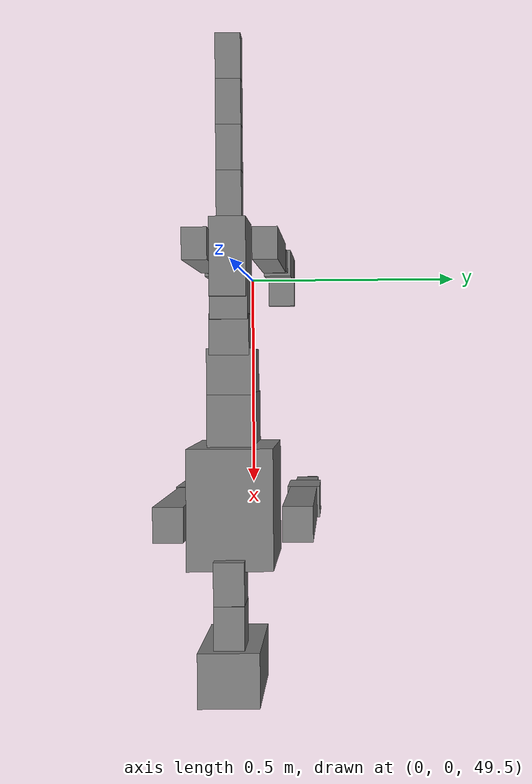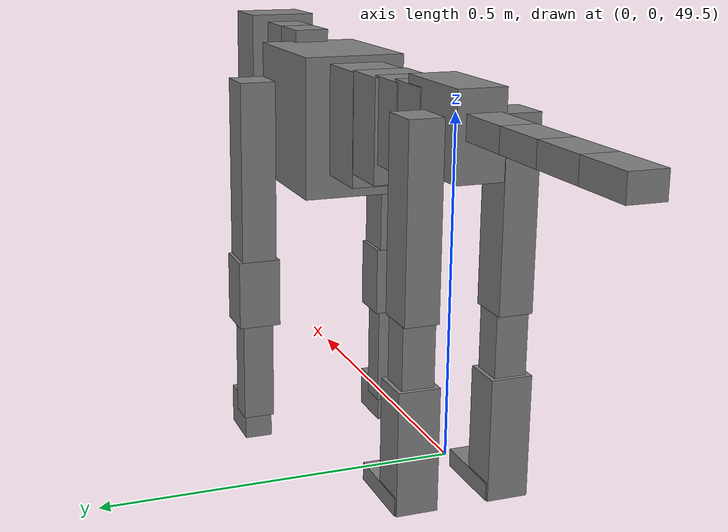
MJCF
<mujoco model="dog">

    <default>
        <joint armature="0.02" stiffness="1" damping="0.2" limited="true"/>
        <geom condim="3" friction="1 0.05 0.05" margin="0.01"/>
        <motor ctrllimited="true" ctrlrange="-1.0 1.0" forcelimited="true" gear="50"/>
    </default>

    <compiler inertiafromgeom="true" angle="radian"/>

    <option timestep="0.016" iterations="50" tolerance="1e-10" solver="Newton" jacobian="dense" cone="pyramidal"/>

    <size nconmax="20000" njmax="60000" nstack="5000000"/>
    <visual>
        <map force="0.1" zfar="30"/>
        <rgba haze="0.15 0.25 0.35 1"/>
        <quality shadowsize="2048"/>
        <global offwidth="800" offheight="800"/>
    </visual>

    <asset>
        <texture type="skybox" builtin="gradient" rgb1="0.3 0.5 0.7" rgb2="0 0 0" width="512" height="512"/>
        <texture name="texplane" type="2d" builtin="checker" rgb1=".2 .3 .4" rgb2=".1 0.15 0.2" width="512" height="512"
                 mark="cross" markrgb=".8 .8 .8"/>
        <texture name="texgeom" type="cube" builtin="flat" mark="cross" width="127" height="1278" rgb1="0.8 0.6 0.4"
                 rgb2="0.8 0.6 0.4" markrgb="1 1 1" random="0.01"/>

        <material name="matplane" reflectance="0.3" texture="texplane" texrepeat="1 1" texuniform="true"/>
        <material name="matgeom" texture="texgeom" texuniform="true" rgba="0.8 0.6 .4 1"/>
    </asset>

    <worldbody>
        <geom name="floor" pos="0 0 0" size="0 0 .25" type="plane" material="matplane" condim="3"/>

        <light directional="false" diffuse=".2 .2 .2" specular="0 0 0" pos="0 0 5" dir="0 0 -1" castshadow="false"/>
        <light mode="targetbodycom" target="torso" directional="false" diffuse=".8 .8 .8" specular="0.3 0.3 0.3"
               pos="0 0 4.0" dir="0 0 -1"/>

        <body name="root" pos="0 0 50">
            <freejoint name="root_1"/>
            <geom type="box" pos="0 0 -0.02" size="0.0774  0.0358  0.063" density="2030"/>

            <body name="spine1" pos="0.054 0 0">
                <joint name="spine1_y" axis="0 1 0" range="0 0.7" limited="true"/>
                <geom type="box" pos="0.02375 0 -0.03" size="0.04375  0.0375  0.05985" density="2030"/>

                <body name="spine2" pos="0.0612 0 0">
                    <joint name="spine2_y" axis="0 1 0" range="-0.15 0.15" limited="true"/>
                    <geom type="box" pos="0.03555  0  -0.04" size="0.04055  0.039  0.06615" density="2030"/>

                    <body name="spine3" pos="0.0730 0 0">
                        <joint name="spine3_y" axis="0 1 0" range="-0.15 0.15" limited="true"/>
                        <geom type="box" pos="0.03555  0  -0.057" size="0.04555  0.0445  0.081" density="2030"/>

                        <body name="spine4" pos="0.0780 0 0">
                            <joint name="spine4_y" axis="0 1 0" range="-0.15 0.15" limited="true"/>
                            <geom type="box" pos="0.05265  0  -0.07" size="0.05265  0.045  0.09135" density="2030"/>

                            <body name="torso" pos="0.1082 0 0">
                                <joint name="torso_y" axis="0 1 0" range="-0.15 0.15" limited="true"/>
                                <geom type="box" pos="0.11925  0  -0.085" size="0.11925  0.085  0.11745"
                                      density="2030"/>

                                <body name="neck1" pos="0.2160  0   0.0180">
                                    <joint name="neck1_y" axis="0 1 0" range="-1.2  -1" limited="true"/>
                                    <geom type="box" pos="0.0423  0  0" size="0.0423  0.03  0.036" density="2325"/>

                                    <body name="neck2" pos="0.0853  0  0">
                                        <joint name="neck2_y" axis="0 1 0" range="0.1  0" limited="true"/>
                                        <geom type="box" pos="0.0423  0  0" size="0.0423  0.03  0.036" density="2325"/>

                                        <body name="head" pos="0.0853  0  0">
                                            <joint name="head_y" axis="0 1 0" range="-0.3  -0.2" limited="true"/>
                                            <geom type="box" pos="0.0531  0  -0.055" size="0.0531  0.06  0.1044"
                                                  density="4030"/>

                                        </body>
                                    </body>
                                </body>

                                <body name="front_shoulder" pos="0.156  0   -0.0480">
                                    <joint name="front_shoulder_y" axis="0 1 0" range="-1 1.5" limited="true"/>
                                    <geom type="box" pos="0 0.13 -0.1449" size="0.0360  0.0308  0.1715" density="1158"/>
                                    <geom type="box" pos="0 -0.13 -0.1449" size="0.0360  0.0308  0.1715"
                                          density="1158"/>

                                    <body name="front_elbow" pos="0  0  -0.2897">
                                        <joint name="front_elbow_y" axis="0 1 0" range="-2 0" limited="true"/>
                                        <geom type="box" pos="0 0.13 -0.0603" size="0.0362  0.0370  0.0603"
                                              density="1081"/>
                                        <geom type="box" pos="0 -0.13 -0.0603" size="0.0362  0.0370  0.0603"
                                              density="1081"/>

                                        <body name="front_wrist" pos="0  0  -0.1206">
                                            <joint name="front_wrist_y" axis="0 1 0" range="-0.2 0" limited="true"/>
                                            <geom type="box" pos="0 0.13 -0.0817" size="0.0245  0.0273  0.0948"
                                                  density="1664"/>
                                            <geom type="box" pos="0 -0.13 -0.0817" size="0.0245  0.0273  0.0948"
                                                  density="1664"/>

                                            <body name="front_finger_end" pos="0  0  -0.1634">
                                                <joint name="front_finger_y" axis="0 1 0" range="-0.4 1"
                                                       limited="true"/>
                                                <geom type="box" pos="0.0240  0.13  -0.0199"
                                                      size="0.0439  0.0240  0.0349" density="1515"/>
                                                <geom type="box" pos="0.0240  -0.13  -0.0199"
                                                      size="0.0439  0.0240  0.0349" density="1515"/>

                                            </body>

                                        </body>
                                    </body>
                                </body>

                            </body>
                        </body>
                    </body>
                </body>
            </body>

            <body name="back_hip" pos="-0.03 0 -0.018">
                <joint name="back_hip_y" axis="0 1 0" range="-1.5 0.3" limited="true"/>
                <geom type="box" pos="0 0.07 -0.1175" size="0.0324  0.0254  0.1403" density="1154"/>
                <geom type="box" pos="0 -0.07 -0.1175" size="0.0324  0.0254  0.1403" density="1154"/>

                <body name="back_knee" pos="0  0  -0.2351">
                    <joint name="back_knee_y" axis="0 1 0" range="0 2.8" limited="true"/>
                    <geom type="box" pos="0 0.07 -0.0633" size="0.0244  0.0241  0.0789" density="1227"/>
                    <geom type="box" pos="0 -0.07 -0.0633" size="0.0244  0.0241  0.0789" density="1227"/>

                    <body name="back_ankle" pos="0  0  -0.1267">
                        <joint name="back_ankle_y" axis="0 1 0" range="-2.2 0" limited="true"/>
                        <geom type="box" pos="0 0.07 -0.0802" size="0.0309  0.0309  0.0915" density="1284"/>
                        <geom type="box" pos="0 -0.07 -0.0802" size="0.0309  0.0309  0.0915" density="1284"/>

                        <body name="back_toe_end" pos="0  0  -0.1604">
                            <joint name="back_toe_y" axis="0 1 0" range="-0.4 1" limited="true"/>
                            <geom type="box" pos="0.0322  0.07  0.0016" size="0.0591  0.0322  0.0134" density="1515"/>
                            <geom type="box" pos="0.0322  -0.07  0.0016" size="0.0591  0.0322  0.0134" density="1515"/>

                        </body>
                    </body>
                </body>
            </body>

            <body name="tail1" pos="-0.074 0 -0.006">
                <joint name="tail1_y" axis="0 1 0" range="-0.2 0.2" limited="true"/>
                <geom type="box" pos="-0.0536  0  0" size="0.045  0.025  0.0175" density="1587"/>

                <body name="tail2" pos="-0.09 0 0">
                    <joint name="tail2_y" axis="0 1 0" range="-0.2 0.2" limited="true"/>
                    <geom type="box" pos="-0.0536  0  0" size="0.045  0.025  0.0175" density="1587"/>

                    <body name="tail3" pos="-0.09 0 0">
                        <joint name="tail3_y" axis="0 1 0" range="-0.2 0.2" limited="true"/>
                        <geom type="box" pos="-0.0536  0  0" size="0.045  0.025  0.0175" density="1587"/>

                        <body name="tail4" pos="-0.09 0 0">
                            <joint name="tail4_y" axis="0 1 0" range="-0.2 0.2" limited="true"/>
                            <geom type="box" pos="-0.0536  0  0" size="0.045  0.025  0.0175" density="1587"/>

                        </body>
                    </body>
                </body>
            </body>
        </body>
    </worldbody>

    <actuator>
        <motor joint="spine1_y" forcerange="-150 150     "/>
        <motor joint="spine2_y" forcerange="-150 150     "/>
        <motor joint="spine3_y" forcerange="-150 150     "/>
        <motor joint="spine4_y" forcerange="-150 150     "/>
        <motor joint="torso_y" forcerange="-150 150     "/>
        <motor joint="neck1_y" forcerange="-100 100       "/>
        <motor joint="neck2_y" forcerange="-100 100       "/>
        <motor joint="head_y" forcerange="-150 150       "/>
        <motor joint="front_shoulder_y" forcerange="-160.39 145.00"/>
        <motor joint="front_elbow_y" forcerange="-172.16 197.07"/>
        <motor joint="front_wrist_y" forcerange="-74.05 144.02"/>
        <motor joint="front_finger_y" forcerange="-45.81 41.94"/>
        <motor joint="back_hip_y" forcerange="-328.29 210.04"/>
        <motor joint="back_knee_y" forcerange="-293.40 256.49"/>
        <motor joint="back_angle_y" forcerange="-153.62 241.15"/>
        <motor joint="back_toe_y" forcerange="-103.78 73.95"/>
        <motor joint="tail1_y" forcerange="-50 50     "/>
        <motor joint="tail2_y" forcerange="-50 50     "/>
        <motor joint="tail3_y" forcerange="-50 50     "/>
        <motor joint="tail4_y" forcerange="-50 50     "/>
    </actuator>
</mujoco>
